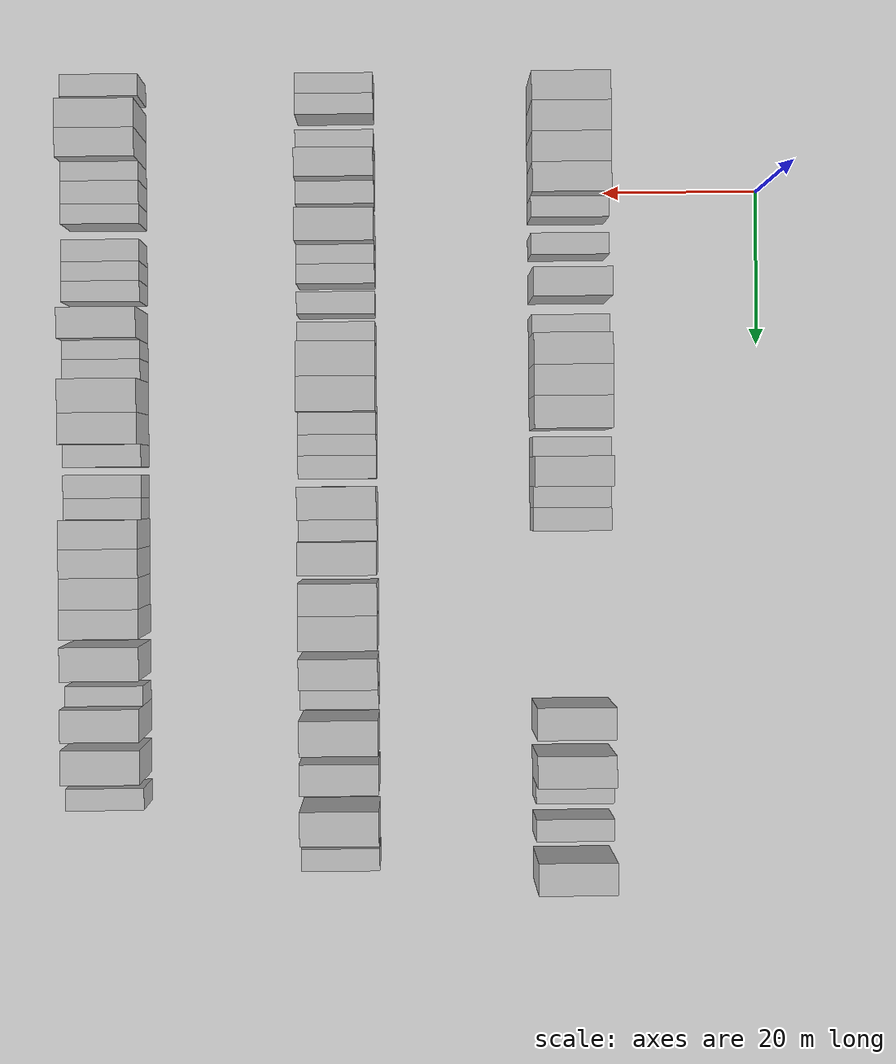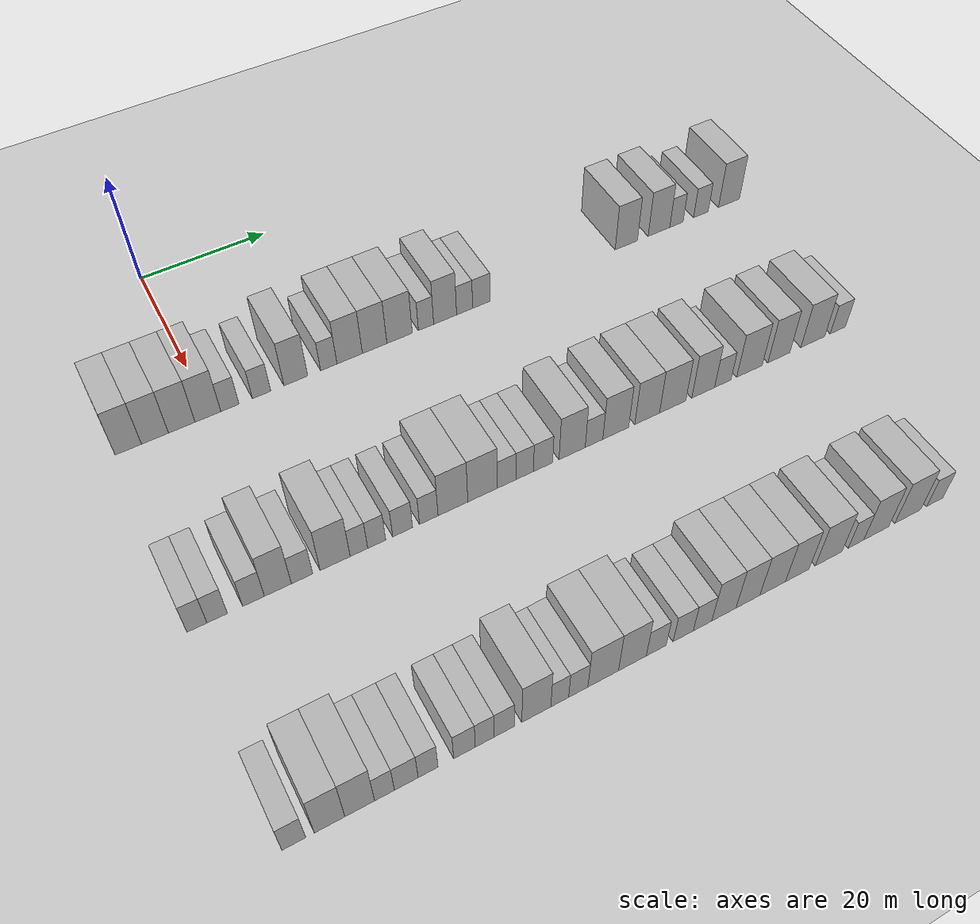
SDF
<sdf version="1.6">
 <world name="default">
  <include><name>ground_plane_1</name><uri>model://HANNAS_ground_plane</uri></include>
  <model name="building_110">
   <static>1</static>
   <pose>25.0000 -11.9744 0 0.000000 0.000000 0.000000</pose>
   <link name="link">
    <pose>0 0 4.50 0 0 0</pose>
    <collision name="collision"><geometry><box><size>10.0000 3.7165 9.0000</size></box></geometry></collision>
    <visual name="visual">
     <cast_shadows>0</cast_shadows>
     <geometry><box><size>10.0000 3.7165 9.0000</size></box></geometry>
     <material>
      <script>
       <uri>model://HANNAS_wall/materials/scripts</uri>
       <uri>model://HANNAS_wall/materials/textures</uri>
       <name>vrc/HANNAS_wall</name>
      </script>
     </material>
    </visual>
   </link>
  </model>
  <model name="building_111">
   <static>1</static>
   <pose>25.0000 -8.1921 0 0.000000 0.000000 0.000000</pose>
   <link name="link">
    <pose>0 0 4.50 0 0 0</pose>
    <collision name="collision"><geometry><box><size>10.0000 3.8481 9.0000</size></box></geometry></collision>
    <visual name="visual">
     <cast_shadows>0</cast_shadows>
     <geometry><box><size>10.0000 3.8481 9.0000</size></box></geometry>
     <material>
      <script>
       <uri>model://HANNAS_wall/materials/scripts</uri>
       <uri>model://HANNAS_wall/materials/textures</uri>
       <name>vrc/HANNAS_wall</name>
      </script>
     </material>
    </visual>
   </link>
  </model>
  <model name="building_112">
   <static>1</static>
   <pose>25.0000 -4.3406 0 0.000000 0.000000 0.000000</pose>
   <link name="link">
    <pose>0 0 4.50 0 0 0</pose>
    <collision name="collision"><geometry><box><size>10.0000 3.8550 9.0000</size></box></geometry></collision>
    <visual name="visual">
     <cast_shadows>0</cast_shadows>
     <geometry><box><size>10.0000 3.8550 9.0000</size></box></geometry>
     <material>
      <script>
       <uri>model://HANNAS_wall/materials/scripts</uri>
       <uri>model://HANNAS_wall/materials/textures</uri>
       <name>vrc/HANNAS_wall</name>
      </script>
     </material>
    </visual>
   </link>
  </model>
  <model name="building_113">
   <static>1</static>
   <pose>25.0000 -0.5288 0 0.000000 0.000000 0.000000</pose>
   <link name="link">
    <pose>0 0 4.50 0 0 0</pose>
    <collision name="collision"><geometry><box><size>10.0000 3.7687 9.0000</size></box></geometry></collision>
    <visual name="visual">
     <cast_shadows>0</cast_shadows>
     <geometry><box><size>10.0000 3.7687 9.0000</size></box></geometry>
     <material>
      <script>
       <uri>model://HANNAS_wall/materials/scripts</uri>
       <uri>model://HANNAS_wall/materials/textures</uri>
       <name>vrc/HANNAS_wall</name>
      </script>
     </material>
    </visual>
   </link>
  </model>
  <model name="building_114">
   <static>1</static>
   <pose>25.0000 2.7013 0 0.000000 0.000000 0.000000</pose>
   <link name="link">
    <pose>0 0 3.00 0 0 0</pose>
    <collision name="collision"><geometry><box><size>10.0000 2.6915 6.0000</size></box></geometry></collision>
    <visual name="visual">
     <cast_shadows>0</cast_shadows>
     <geometry><box><size>10.0000 2.6915 6.0000</size></box></geometry>
     <material>
      <script>
       <uri>model://HANNAS_wall/materials/scripts</uri>
       <uri>model://HANNAS_wall/materials/textures</uri>
       <name>vrc/HANNAS_wall</name>
      </script>
     </material>
    </visual>
   </link>
  </model>
  <model name="building_115">
   <static>1</static>
   <pose>25.0000 7.4290 0 0.000000 0.000000 0.000000</pose>
   <link name="link">
    <pose>0 0 3.00 0 0 0</pose>
    <collision name="collision"><geometry><box><size>10.0000 2.7639 6.0000</size></box></geometry></collision>
    <visual name="visual">
     <cast_shadows>0</cast_shadows>
     <geometry><box><size>10.0000 2.7639 6.0000</size></box></geometry>
     <material>
      <script>
       <uri>model://HANNAS_wall/materials/scripts</uri>
       <uri>model://HANNAS_wall/materials/textures</uri>
       <name>vrc/HANNAS_wall</name>
      </script>
     </material>
    </visual>
   </link>
  </model>
  <model name="building_116">
   <static>1</static>
   <pose>25.0000 12.6357 0 0.000000 0.000000 0.000000</pose>
   <link name="link">
    <pose>0 0 4.50 0 0 0</pose>
    <collision name="collision"><geometry><box><size>10.0000 3.6495 9.0000</size></box></geometry></collision>
    <visual name="visual">
     <cast_shadows>0</cast_shadows>
     <geometry><box><size>10.0000 3.6495 9.0000</size></box></geometry>
     <material>
      <script>
       <uri>model://HANNAS_wall/materials/scripts</uri>
       <uri>model://HANNAS_wall/materials/textures</uri>
       <name>vrc/HANNAS_wall</name>
      </script>
     </material>
    </visual>
   </link>
  </model>
  <model name="building_117">
   <static>1</static>
   <pose>25.0000 17.7365 0 0.000000 0.000000 0.000000</pose>
   <link name="link">
    <pose>0 0 3.00 0 0 0</pose>
    <collision name="collision"><geometry><box><size>10.0000 2.5520 6.0000</size></box></geometry></collision>
    <visual name="visual">
     <cast_shadows>0</cast_shadows>
     <geometry><box><size>10.0000 2.5520 6.0000</size></box></geometry>
     <material>
      <script>
       <uri>model://HANNAS_wall/materials/scripts</uri>
       <uri>model://HANNAS_wall/materials/textures</uri>
       <name>vrc/HANNAS_wall</name>
      </script>
     </material>
    </visual>
   </link>
  </model>
  <model name="building_118">
   <static>1</static>
   <pose>25.0000 21.0168 0 0.000000 0.000000 0.000000</pose>
   <link name="link">
    <pose>0 0 4.50 0 0 0</pose>
    <collision name="collision"><geometry><box><size>10.0000 4.0085 9.0000</size></box></geometry></collision>
    <visual name="visual">
     <cast_shadows>0</cast_shadows>
     <geometry><box><size>10.0000 4.0085 9.0000</size></box></geometry>
     <material>
      <script>
       <uri>model://HANNAS_wall/materials/scripts</uri>
       <uri>model://HANNAS_wall/materials/textures</uri>
       <name>vrc/HANNAS_wall</name>
      </script>
     </material>
    </visual>
   </link>
  </model>
  <model name="building_119">
   <static>1</static>
   <pose>25.0000 24.9818 0 0.000000 0.000000 0.000000</pose>
   <link name="link">
    <pose>0 0 4.50 0 0 0</pose>
    <collision name="collision"><geometry><box><size>10.0000 3.9215 9.0000</size></box></geometry></collision>
    <visual name="visual">
     <cast_shadows>0</cast_shadows>
     <geometry><box><size>10.0000 3.9215 9.0000</size></box></geometry>
     <material>
      <script>
       <uri>model://HANNAS_wall/materials/scripts</uri>
       <uri>model://HANNAS_wall/materials/textures</uri>
       <name>vrc/HANNAS_wall</name>
      </script>
     </material>
    </visual>
   </link>
  </model>
  <model name="building_120">
   <static>1</static>
   <pose>25.0000 29.0046 0 0.000000 0.000000 0.000000</pose>
   <link name="link">
    <pose>0 0 4.50 0 0 0</pose>
    <collision name="collision"><geometry><box><size>10.0000 4.1242 9.0000</size></box></geometry></collision>
    <visual name="visual">
     <cast_shadows>0</cast_shadows>
     <geometry><box><size>10.0000 4.1242 9.0000</size></box></geometry>
     <material>
      <script>
       <uri>model://HANNAS_wall/materials/scripts</uri>
       <uri>model://HANNAS_wall/materials/textures</uri>
       <name>vrc/HANNAS_wall</name>
      </script>
     </material>
    </visual>
   </link>
  </model>
  <model name="building_121">
   <static>1</static>
   <pose>25.0000 33.3214 0 0.000000 0.000000 0.000000</pose>
   <link name="link">
    <pose>0 0 3.00 0 0 0</pose>
    <collision name="collision"><geometry><box><size>10.0000 2.5093 6.0000</size></box></geometry></collision>
    <visual name="visual">
     <cast_shadows>0</cast_shadows>
     <geometry><box><size>10.0000 2.5093 6.0000</size></box></geometry>
     <material>
      <script>
       <uri>model://HANNAS_wall/materials/scripts</uri>
       <uri>model://HANNAS_wall/materials/textures</uri>
       <name>vrc/HANNAS_wall</name>
      </script>
     </material>
    </visual>
   </link>
  </model>
  <model name="building_122">
   <static>1</static>
   <pose>25.0000 36.4852 0 0.000000 0.000000 0.000000</pose>
   <link name="link">
    <pose>0 0 4.50 0 0 0</pose>
    <collision name="collision"><geometry><box><size>10.0000 3.8183 9.0000</size></box></geometry></collision>
    <visual name="visual">
     <cast_shadows>0</cast_shadows>
     <geometry><box><size>10.0000 3.8183 9.0000</size></box></geometry>
     <material>
      <script>
       <uri>model://HANNAS_wall/materials/scripts</uri>
       <uri>model://HANNAS_wall/materials/textures</uri>
       <name>vrc/HANNAS_wall</name>
      </script>
     </material>
    </visual>
   </link>
  </model>
  <model name="building_123">
   <static>1</static>
   <pose>25.0000 39.7418 0 0.000000 0.000000 0.000000</pose>
   <link name="link">
    <pose>0 0 3.00 0 0 0</pose>
    <collision name="collision"><geometry><box><size>10.0000 2.6950 6.0000</size></box></geometry></collision>
    <visual name="visual">
     <cast_shadows>0</cast_shadows>
     <geometry><box><size>10.0000 2.6950 6.0000</size></box></geometry>
     <material>
      <script>
       <uri>model://HANNAS_wall/materials/scripts</uri>
       <uri>model://HANNAS_wall/materials/textures</uri>
       <name>vrc/HANNAS_wall</name>
      </script>
     </material>
    </visual>
   </link>
  </model>
  <model name="building_124">
   <static>1</static>
   <pose>25.0000 42.5812 0 0.000000 0.000000 0.000000</pose>
   <link name="link">
    <pose>0 0 3.00 0 0 0</pose>
    <collision name="collision"><geometry><box><size>10.0000 2.9837 6.0000</size></box></geometry></collision>
    <visual name="visual">
     <cast_shadows>0</cast_shadows>
     <geometry><box><size>10.0000 2.9837 6.0000</size></box></geometry>
     <material>
      <script>
       <uri>model://HANNAS_wall/materials/scripts</uri>
       <uri>model://HANNAS_wall/materials/textures</uri>
       <name>vrc/HANNAS_wall</name>
      </script>
     </material>
    </visual>
   </link>
  </model>
  <model name="building_125">
   <static>1</static>
   <pose>25.0000 68.2220 0 0.000000 0.000000 0.000000</pose>
   <link name="link">
    <pose>0 0 4.50 0 0 0</pose>
    <collision name="collision"><geometry><box><size>10.0000 4.0993 9.0000</size></box></geometry></collision>
    <visual name="visual">
     <cast_shadows>0</cast_shadows>
     <geometry><box><size>10.0000 4.0993 9.0000</size></box></geometry>
     <material>
      <script>
       <uri>model://HANNAS_wall/materials/scripts</uri>
       <uri>model://HANNAS_wall/materials/textures</uri>
       <name>vrc/HANNAS_wall</name>
      </script>
     </material>
    </visual>
   </link>
  </model>
  <model name="building_126">
   <static>1</static>
   <pose>25.0000 74.3005 0 0.000000 0.000000 0.000000</pose>
   <link name="link">
    <pose>0 0 4.50 0 0 0</pose>
    <collision name="collision"><geometry><box><size>10.0000 4.0575 9.0000</size></box></geometry></collision>
    <visual name="visual">
     <cast_shadows>0</cast_shadows>
     <geometry><box><size>10.0000 4.0575 9.0000</size></box></geometry>
     <material>
      <script>
       <uri>model://HANNAS_wall/materials/scripts</uri>
       <uri>model://HANNAS_wall/materials/textures</uri>
       <name>vrc/HANNAS_wall</name>
      </script>
     </material>
    </visual>
   </link>
  </model>
  <model name="building_127">
   <static>1</static>
   <pose>25.0000 77.5912 0 0.000000 0.000000 0.000000</pose>
   <link name="link">
    <pose>0 0 3.00 0 0 0</pose>
    <collision name="collision"><geometry><box><size>10.0000 2.5240 6.0000</size></box></geometry></collision>
    <visual name="visual">
     <cast_shadows>0</cast_shadows>
     <geometry><box><size>10.0000 2.5240 6.0000</size></box></geometry>
     <material>
      <script>
       <uri>model://HANNAS_wall/materials/scripts</uri>
       <uri>model://HANNAS_wall/materials/textures</uri>
       <name>vrc/HANNAS_wall</name>
      </script>
     </material>
    </visual>
   </link>
  </model>
  <model name="building_128">
   <static>1</static>
   <pose>25.0000 82.2687 0 0.000000 0.000000 0.000000</pose>
   <link name="link">
    <pose>0 0 3.00 0 0 0</pose>
    <collision name="collision"><geometry><box><size>10.0000 2.8309 6.0000</size></box></geometry></collision>
    <visual name="visual">
     <cast_shadows>0</cast_shadows>
     <geometry><box><size>10.0000 2.8309 6.0000</size></box></geometry>
     <material>
      <script>
       <uri>model://HANNAS_wall/materials/scripts</uri>
       <uri>model://HANNAS_wall/materials/textures</uri>
       <name>vrc/HANNAS_wall</name>
      </script>
     </material>
    </visual>
   </link>
  </model>
  <model name="building_129">
   <static>1</static>
   <pose>25.0000 87.7369 0 0.000000 0.000000 0.000000</pose>
   <link name="link">
    <pose>0 0 4.50 0 0 0</pose>
    <collision name="collision"><geometry><box><size>10.0000 4.1055 9.0000</size></box></geometry></collision>
    <visual name="visual">
     <cast_shadows>0</cast_shadows>
     <geometry><box><size>10.0000 4.1055 9.0000</size></box></geometry>
     <material>
      <script>
       <uri>model://HANNAS_wall/materials/scripts</uri>
       <uri>model://HANNAS_wall/materials/textures</uri>
       <name>vrc/HANNAS_wall</name>
      </script>
     </material>
    </visual>
   </link>
  </model>
  <model name="building_342">
   <static>1</static>
   <pose>55.0000 -13.3091 0 0.000000 0.000000 0.000000</pose>
   <link name="link">
    <pose>0 0 3.00 0 0 0</pose>
    <collision name="collision"><geometry><box><size>10.0000 2.5905 6.0000</size></box></geometry></collision>
    <visual name="visual">
     <cast_shadows>0</cast_shadows>
     <geometry><box><size>10.0000 2.5905 6.0000</size></box></geometry>
     <material>
      <script>
       <uri>model://HANNAS_wall/materials/scripts</uri>
       <uri>model://HANNAS_wall/materials/textures</uri>
       <name>vrc/HANNAS_wall</name>
      </script>
     </material>
    </visual>
   </link>
  </model>
  <model name="building_343">
   <static>1</static>
   <pose>55.0000 -10.6800 0 0.000000 0.000000 0.000000</pose>
   <link name="link">
    <pose>0 0 3.00 0 0 0</pose>
    <collision name="collision"><geometry><box><size>10.0000 2.6679 6.0000</size></box></geometry></collision>
    <visual name="visual">
     <cast_shadows>0</cast_shadows>
     <geometry><box><size>10.0000 2.6679 6.0000</size></box></geometry>
     <material>
      <script>
       <uri>model://HANNAS_wall/materials/scripts</uri>
       <uri>model://HANNAS_wall/materials/textures</uri>
       <name>vrc/HANNAS_wall</name>
      </script>
     </material>
    </visual>
   </link>
  </model>
  <model name="building_344">
   <static>1</static>
   <pose>55.0000 -5.9070 0 0.000000 0.000000 0.000000</pose>
   <link name="link">
    <pose>0 0 3.00 0 0 0</pose>
    <collision name="collision"><geometry><box><size>10.0000 2.8781 6.0000</size></box></geometry></collision>
    <visual name="visual">
     <cast_shadows>0</cast_shadows>
     <geometry><box><size>10.0000 2.8781 6.0000</size></box></geometry>
     <material>
      <script>
       <uri>model://HANNAS_wall/materials/scripts</uri>
       <uri>model://HANNAS_wall/materials/textures</uri>
       <name>vrc/HANNAS_wall</name>
      </script>
     </material>
    </visual>
   </link>
  </model>
  <model name="building_345">
   <static>1</static>
   <pose>55.0000 -2.6522 0 0.000000 0.000000 0.000000</pose>
   <link name="link">
    <pose>0 0 4.50 0 0 0</pose>
    <collision name="collision"><geometry><box><size>10.0000 3.6316 9.0000</size></box></geometry></collision>
    <visual name="visual">
     <cast_shadows>0</cast_shadows>
     <geometry><box><size>10.0000 3.6316 9.0000</size></box></geometry>
     <material>
      <script>
       <uri>model://HANNAS_wall/materials/scripts</uri>
       <uri>model://HANNAS_wall/materials/textures</uri>
       <name>vrc/HANNAS_wall</name>
      </script>
     </material>
    </visual>
   </link>
  </model>
  <model name="building_346">
   <static>1</static>
   <pose>55.0000 0.6236 0 0.000000 0.000000 0.000000</pose>
   <link name="link">
    <pose>0 0 3.00 0 0 0</pose>
    <collision name="collision"><geometry><box><size>10.0000 2.9200 6.0000</size></box></geometry></collision>
    <visual name="visual">
     <cast_shadows>0</cast_shadows>
     <geometry><box><size>10.0000 2.9200 6.0000</size></box></geometry>
     <material>
      <script>
       <uri>model://HANNAS_wall/materials/scripts</uri>
       <uri>model://HANNAS_wall/materials/textures</uri>
       <name>vrc/HANNAS_wall</name>
      </script>
     </material>
    </visual>
   </link>
  </model>
  <model name="building_347">
   <static>1</static>
   <pose>55.0000 5.1681 0 0.000000 0.000000 0.000000</pose>
   <link name="link">
    <pose>0 0 4.50 0 0 0</pose>
    <collision name="collision"><geometry><box><size>10.0000 4.1691 9.0000</size></box></geometry></collision>
    <visual name="visual">
     <cast_shadows>0</cast_shadows>
     <geometry><box><size>10.0000 4.1691 9.0000</size></box></geometry>
     <material>
      <script>
       <uri>model://HANNAS_wall/materials/scripts</uri>
       <uri>model://HANNAS_wall/materials/textures</uri>
       <name>vrc/HANNAS_wall</name>
      </script>
     </material>
    </visual>
   </link>
  </model>
  <model name="building_348">
   <static>1</static>
   <pose>55.0000 8.4857 0 0.000000 0.000000 0.000000</pose>
   <link name="link">
    <pose>0 0 3.00 0 0 0</pose>
    <collision name="collision"><geometry><box><size>10.0000 2.4660 6.0000</size></box></geometry></collision>
    <visual name="visual">
     <cast_shadows>0</cast_shadows>
     <geometry><box><size>10.0000 2.4660 6.0000</size></box></geometry>
     <material>
      <script>
       <uri>model://HANNAS_wall/materials/scripts</uri>
       <uri>model://HANNAS_wall/materials/textures</uri>
       <name>vrc/HANNAS_wall</name>
      </script>
     </material>
    </visual>
   </link>
  </model>
  <model name="building_349">
   <static>1</static>
   <pose>55.0000 10.9901 0 0.000000 0.000000 0.000000</pose>
   <link name="link">
    <pose>0 0 3.00 0 0 0</pose>
    <collision name="collision"><geometry><box><size>10.0000 2.5428 6.0000</size></box></geometry></collision>
    <visual name="visual">
     <cast_shadows>0</cast_shadows>
     <geometry><box><size>10.0000 2.5428 6.0000</size></box></geometry>
     <material>
      <script>
       <uri>model://HANNAS_wall/materials/scripts</uri>
       <uri>model://HANNAS_wall/materials/textures</uri>
       <name>vrc/HANNAS_wall</name>
      </script>
     </material>
    </visual>
   </link>
  </model>
  <model name="building_350">
   <static>1</static>
   <pose>55.0000 14.6905 0 0.000000 0.000000 0.000000</pose>
   <link name="link">
    <pose>0 0 3.00 0 0 0</pose>
    <collision name="collision"><geometry><box><size>10.0000 2.8580 6.0000</size></box></geometry></collision>
    <visual name="visual">
     <cast_shadows>0</cast_shadows>
     <geometry><box><size>10.0000 2.8580 6.0000</size></box></geometry>
     <material>
      <script>
       <uri>model://HANNAS_wall/materials/scripts</uri>
       <uri>model://HANNAS_wall/materials/textures</uri>
       <name>vrc/HANNAS_wall</name>
      </script>
     </material>
    </visual>
   </link>
  </model>
  <model name="building_351">
   <static>1</static>
   <pose>55.0000 18.4746 0 0.000000 0.000000 0.000000</pose>
   <link name="link">
    <pose>0 0 3.00 0 0 0</pose>
    <collision name="collision"><geometry><box><size>10.0000 2.7102 6.0000</size></box></geometry></collision>
    <visual name="visual">
     <cast_shadows>0</cast_shadows>
     <geometry><box><size>10.0000 2.7102 6.0000</size></box></geometry>
     <material>
      <script>
       <uri>model://HANNAS_wall/materials/scripts</uri>
       <uri>model://HANNAS_wall/materials/textures</uri>
       <name>vrc/HANNAS_wall</name>
      </script>
     </material>
    </visual>
   </link>
  </model>
  <model name="building_352">
   <static>1</static>
   <pose>55.0000 22.0265 0 0.000000 0.000000 0.000000</pose>
   <link name="link">
    <pose>0 0 4.50 0 0 0</pose>
    <collision name="collision"><geometry><box><size>10.0000 4.3938 9.0000</size></box></geometry></collision>
    <visual name="visual">
     <cast_shadows>0</cast_shadows>
     <geometry><box><size>10.0000 4.3938 9.0000</size></box></geometry>
     <material>
      <script>
       <uri>model://HANNAS_wall/materials/scripts</uri>
       <uri>model://HANNAS_wall/materials/textures</uri>
       <name>vrc/HANNAS_wall</name>
      </script>
     </material>
    </visual>
   </link>
  </model>
  <model name="building_353">
   <static>1</static>
   <pose>55.0000 26.4506 0 0.000000 0.000000 0.000000</pose>
   <link name="link">
    <pose>0 0 4.50 0 0 0</pose>
    <collision name="collision"><geometry><box><size>10.0000 4.4544 9.0000</size></box></geometry></collision>
    <visual name="visual">
     <cast_shadows>0</cast_shadows>
     <geometry><box><size>10.0000 4.4544 9.0000</size></box></geometry>
     <material>
      <script>
       <uri>model://HANNAS_wall/materials/scripts</uri>
       <uri>model://HANNAS_wall/materials/textures</uri>
       <name>vrc/HANNAS_wall</name>
      </script>
     </material>
    </visual>
   </link>
  </model>
  <model name="building_354">
   <static>1</static>
   <pose>55.0000 30.0835 0 0.000000 0.000000 0.000000</pose>
   <link name="link">
    <pose>0 0 3.00 0 0 0</pose>
    <collision name="collision"><geometry><box><size>10.0000 2.8115 6.0000</size></box></geometry></collision>
    <visual name="visual">
     <cast_shadows>0</cast_shadows>
     <geometry><box><size>10.0000 2.8115 6.0000</size></box></geometry>
     <material>
      <script>
       <uri>model://HANNAS_wall/materials/scripts</uri>
       <uri>model://HANNAS_wall/materials/textures</uri>
       <name>vrc/HANNAS_wall</name>
      </script>
     </material>
    </visual>
   </link>
  </model>
  <model name="building_355">
   <static>1</static>
   <pose>55.0000 32.8354 0 0.000000 0.000000 0.000000</pose>
   <link name="link">
    <pose>0 0 3.00 0 0 0</pose>
    <collision name="collision"><geometry><box><size>10.0000 2.6922 6.0000</size></box></geometry></collision>
    <visual name="visual">
     <cast_shadows>0</cast_shadows>
     <geometry><box><size>10.0000 2.6922 6.0000</size></box></geometry>
     <material>
      <script>
       <uri>model://HANNAS_wall/materials/scripts</uri>
       <uri>model://HANNAS_wall/materials/textures</uri>
       <name>vrc/HANNAS_wall</name>
      </script>
     </material>
    </visual>
   </link>
  </model>
  <model name="building_356">
   <static>1</static>
   <pose>55.0000 35.6728 0 0.000000 0.000000 0.000000</pose>
   <link name="link">
    <pose>0 0 3.00 0 0 0</pose>
    <collision name="collision"><geometry><box><size>10.0000 2.9827 6.0000</size></box></geometry></collision>
    <visual name="visual">
     <cast_shadows>0</cast_shadows>
     <geometry><box><size>10.0000 2.9827 6.0000</size></box></geometry>
     <material>
      <script>
       <uri>model://HANNAS_wall/materials/scripts</uri>
       <uri>model://HANNAS_wall/materials/textures</uri>
       <name>vrc/HANNAS_wall</name>
      </script>
     </material>
    </visual>
   </link>
  </model>
  <model name="building_357">
   <static>1</static>
   <pose>55.0000 40.2346 0 0.000000 0.000000 0.000000</pose>
   <link name="link">
    <pose>0 0 4.50 0 0 0</pose>
    <collision name="collision"><geometry><box><size>10.0000 4.1408 9.0000</size></box></geometry></collision>
    <visual name="visual">
     <cast_shadows>0</cast_shadows>
     <geometry><box><size>10.0000 4.1408 9.0000</size></box></geometry>
     <material>
      <script>
       <uri>model://HANNAS_wall/materials/scripts</uri>
       <uri>model://HANNAS_wall/materials/textures</uri>
       <name>vrc/HANNAS_wall</name>
      </script>
     </material>
    </visual>
   </link>
  </model>
  <model name="building_358">
   <static>1</static>
   <pose>55.0000 43.7119 0 0.000000 0.000000 0.000000</pose>
   <link name="link">
    <pose>0 0 3.00 0 0 0</pose>
    <collision name="collision"><geometry><box><size>10.0000 2.8138 6.0000</size></box></geometry></collision>
    <visual name="visual">
     <cast_shadows>0</cast_shadows>
     <geometry><box><size>10.0000 2.8138 6.0000</size></box></geometry>
     <material>
      <script>
       <uri>model://HANNAS_wall/materials/scripts</uri>
       <uri>model://HANNAS_wall/materials/textures</uri>
       <name>vrc/HANNAS_wall</name>
      </script>
     </material>
    </visual>
   </link>
  </model>
  <model name="building_359">
   <static>1</static>
   <pose>55.0000 47.2188 0 0.000000 0.000000 0.000000</pose>
   <link name="link">
    <pose>0 0 4.50 0 0 0</pose>
    <collision name="collision"><geometry><box><size>10.0000 4.2000 9.0000</size></box></geometry></collision>
    <visual name="visual">
     <cast_shadows>0</cast_shadows>
     <geometry><box><size>10.0000 4.2000 9.0000</size></box></geometry>
     <material>
      <script>
       <uri>model://HANNAS_wall/materials/scripts</uri>
       <uri>model://HANNAS_wall/materials/textures</uri>
       <name>vrc/HANNAS_wall</name>
      </script>
     </material>
    </visual>
   </link>
  </model>
  <model name="building_360">
   <static>1</static>
   <pose>55.0000 52.3633 0 0.000000 0.000000 0.000000</pose>
   <link name="link">
    <pose>0 0 4.50 0 0 0</pose>
    <collision name="collision"><geometry><box><size>10.0000 4.0890 9.0000</size></box></geometry></collision>
    <visual name="visual">
     <cast_shadows>0</cast_shadows>
     <geometry><box><size>10.0000 4.0890 9.0000</size></box></geometry>
     <material>
      <script>
       <uri>model://HANNAS_wall/materials/scripts</uri>
       <uri>model://HANNAS_wall/materials/textures</uri>
       <name>vrc/HANNAS_wall</name>
      </script>
     </material>
    </visual>
   </link>
  </model>
  <model name="building_361">
   <static>1</static>
   <pose>55.0000 56.6086 0 0.000000 0.000000 0.000000</pose>
   <link name="link">
    <pose>0 0 4.50 0 0 0</pose>
    <collision name="collision"><geometry><box><size>10.0000 4.4016 9.0000</size></box></geometry></collision>
    <visual name="visual">
     <cast_shadows>0</cast_shadows>
     <geometry><box><size>10.0000 4.4016 9.0000</size></box></geometry>
     <material>
      <script>
       <uri>model://HANNAS_wall/materials/scripts</uri>
       <uri>model://HANNAS_wall/materials/textures</uri>
       <name>vrc/HANNAS_wall</name>
      </script>
     </material>
    </visual>
   </link>
  </model>
  <model name="building_362">
   <static>1</static>
   <pose>55.0000 61.7635 0 0.000000 0.000000 0.000000</pose>
   <link name="link">
    <pose>0 0 4.50 0 0 0</pose>
    <collision name="collision"><geometry><box><size>10.0000 3.9082 9.0000</size></box></geometry></collision>
    <visual name="visual">
     <cast_shadows>0</cast_shadows>
     <geometry><box><size>10.0000 3.9082 9.0000</size></box></geometry>
     <material>
      <script>
       <uri>model://HANNAS_wall/materials/scripts</uri>
       <uri>model://HANNAS_wall/materials/textures</uri>
       <name>vrc/HANNAS_wall</name>
      </script>
     </material>
    </visual>
   </link>
  </model>
  <model name="building_363">
   <static>1</static>
   <pose>55.0000 65.1330 0 0.000000 0.000000 0.000000</pose>
   <link name="link">
    <pose>0 0 3.00 0 0 0</pose>
    <collision name="collision"><geometry><box><size>10.0000 2.8308 6.0000</size></box></geometry></collision>
    <visual name="visual">
     <cast_shadows>0</cast_shadows>
     <geometry><box><size>10.0000 2.8308 6.0000</size></box></geometry>
     <material>
      <script>
       <uri>model://HANNAS_wall/materials/scripts</uri>
       <uri>model://HANNAS_wall/materials/textures</uri>
       <name>vrc/HANNAS_wall</name>
      </script>
     </material>
    </visual>
   </link>
  </model>
  <model name="building_364">
   <static>1</static>
   <pose>55.0000 69.7888 0 0.000000 0.000000 0.000000</pose>
   <link name="link">
    <pose>0 0 4.50 0 0 0</pose>
    <collision name="collision"><geometry><box><size>10.0000 4.4807 9.0000</size></box></geometry></collision>
    <visual name="visual">
     <cast_shadows>0</cast_shadows>
     <geometry><box><size>10.0000 4.4807 9.0000</size></box></geometry>
     <material>
      <script>
       <uri>model://HANNAS_wall/materials/scripts</uri>
       <uri>model://HANNAS_wall/materials/textures</uri>
       <name>vrc/HANNAS_wall</name>
      </script>
     </material>
    </visual>
   </link>
  </model>
  <model name="building_365">
   <static>1</static>
   <pose>55.0000 74.9965 0 0.000000 0.000000 0.000000</pose>
   <link name="link">
    <pose>0 0 4.50 0 0 0</pose>
    <collision name="collision"><geometry><box><size>10.0000 3.9348 9.0000</size></box></geometry></collision>
    <visual name="visual">
     <cast_shadows>0</cast_shadows>
     <geometry><box><size>10.0000 3.9348 9.0000</size></box></geometry>
     <material>
      <script>
       <uri>model://HANNAS_wall/materials/scripts</uri>
       <uri>model://HANNAS_wall/materials/textures</uri>
       <name>vrc/HANNAS_wall</name>
      </script>
     </material>
    </visual>
   </link>
  </model>
  <model name="building_366">
   <static>1</static>
   <pose>55.0000 81.1471 0 0.000000 0.000000 0.000000</pose>
   <link name="link">
    <pose>0 0 4.50 0 0 0</pose>
    <collision name="collision"><geometry><box><size>10.0000 4.3663 9.0000</size></box></geometry></collision>
    <visual name="visual">
     <cast_shadows>0</cast_shadows>
     <geometry><box><size>10.0000 4.3663 9.0000</size></box></geometry>
     <material>
      <script>
       <uri>model://HANNAS_wall/materials/scripts</uri>
       <uri>model://HANNAS_wall/materials/textures</uri>
       <name>vrc/HANNAS_wall</name>
      </script>
     </material>
    </visual>
   </link>
  </model>
  <model name="building_367">
   <static>1</static>
   <pose>55.0000 85.7487 0 0.000000 0.000000 0.000000</pose>
   <link name="link">
    <pose>0 0 3.00 0 0 0</pose>
    <collision name="collision"><geometry><box><size>10.0000 2.8371 6.0000</size></box></geometry></collision>
    <visual name="visual">
     <cast_shadows>0</cast_shadows>
     <geometry><box><size>10.0000 2.8371 6.0000</size></box></geometry>
     <material>
      <script>
       <uri>model://HANNAS_wall/materials/scripts</uri>
       <uri>model://HANNAS_wall/materials/textures</uri>
       <name>vrc/HANNAS_wall</name>
      </script>
     </material>
    </visual>
   </link>
  </model>
  <model name="building_561">
   <static>1</static>
   <pose>85.0000 -13.3199 0 0.000000 0.000000 0.000000</pose>
   <link name="link">
    <pose>0 0 3.00 0 0 0</pose>
    <collision name="collision"><geometry><box><size>10.0000 2.8226 6.0000</size></box></geometry></collision>
    <visual name="visual">
     <cast_shadows>0</cast_shadows>
     <geometry><box><size>10.0000 2.8226 6.0000</size></box></geometry>
     <material>
      <script>
       <uri>model://HANNAS_wall/materials/scripts</uri>
       <uri>model://HANNAS_wall/materials/textures</uri>
       <name>vrc/HANNAS_wall</name>
      </script>
     </material>
    </visual>
   </link>
  </model>
  <model name="building_562">
   <static>1</static>
   <pose>85.0000 -9.0692 0 0.000000 0.000000 0.000000</pose>
   <link name="link">
    <pose>0 0 4.50 0 0 0</pose>
    <collision name="collision"><geometry><box><size>10.0000 3.6788 9.0000</size></box></geometry></collision>
    <visual name="visual">
     <cast_shadows>0</cast_shadows>
     <geometry><box><size>10.0000 3.6788 9.0000</size></box></geometry>
     <material>
      <script>
       <uri>model://HANNAS_wall/materials/scripts</uri>
       <uri>model://HANNAS_wall/materials/textures</uri>
       <name>vrc/HANNAS_wall</name>
      </script>
     </material>
    </visual>
   </link>
  </model>
  <model name="building_563">
   <static>1</static>
   <pose>85.0000 -5.4130 0 0.000000 0.000000 0.000000</pose>
   <link name="link">
    <pose>0 0 4.50 0 0 0</pose>
    <collision name="collision"><geometry><box><size>10.0000 3.6337 9.0000</size></box></geometry></collision>
    <visual name="visual">
     <cast_shadows>0</cast_shadows>
     <geometry><box><size>10.0000 3.6337 9.0000</size></box></geometry>
     <material>
      <script>
       <uri>model://HANNAS_wall/materials/scripts</uri>
       <uri>model://HANNAS_wall/materials/textures</uri>
       <name>vrc/HANNAS_wall</name>
      </script>
     </material>
    </visual>
   </link>
  </model>
  <model name="building_564">
   <static>1</static>
   <pose>85.0000 -2.3698 0 0.000000 0.000000 0.000000</pose>
   <link name="link">
    <pose>0 0 3.00 0 0 0</pose>
    <collision name="collision"><geometry><box><size>10.0000 2.4527 6.0000</size></box></geometry></collision>
    <visual name="visual">
     <cast_shadows>0</cast_shadows>
     <geometry><box><size>10.0000 2.4527 6.0000</size></box></geometry>
     <material>
      <script>
       <uri>model://HANNAS_wall/materials/scripts</uri>
       <uri>model://HANNAS_wall/materials/textures</uri>
       <name>vrc/HANNAS_wall</name>
      </script>
     </material>
    </visual>
   </link>
  </model>
  <model name="building_565">
   <static>1</static>
   <pose>85.0000 0.3405 0 0.000000 0.000000 0.000000</pose>
   <link name="link">
    <pose>0 0 3.00 0 0 0</pose>
    <collision name="collision"><geometry><box><size>10.0000 2.9677 6.0000</size></box></geometry></collision>
    <visual name="visual">
     <cast_shadows>0</cast_shadows>
     <geometry><box><size>10.0000 2.9677 6.0000</size></box></geometry>
     <material>
      <script>
       <uri>model://HANNAS_wall/materials/scripts</uri>
       <uri>model://HANNAS_wall/materials/textures</uri>
       <name>vrc/HANNAS_wall</name>
      </script>
     </material>
    </visual>
   </link>
  </model>
  <model name="building_566">
   <static>1</static>
   <pose>85.0000 3.0853 0 0.000000 0.000000 0.000000</pose>
   <link name="link">
    <pose>0 0 3.00 0 0 0</pose>
    <collision name="collision"><geometry><box><size>10.0000 2.5220 6.0000</size></box></geometry></collision>
    <visual name="visual">
     <cast_shadows>0</cast_shadows>
     <geometry><box><size>10.0000 2.5220 6.0000</size></box></geometry>
     <material>
      <script>
       <uri>model://HANNAS_wall/materials/scripts</uri>
       <uri>model://HANNAS_wall/materials/textures</uri>
       <name>vrc/HANNAS_wall</name>
      </script>
     </material>
    </visual>
   </link>
  </model>
  <model name="building_567">
   <static>1</static>
   <pose>85.0000 7.7446 0 0.000000 0.000000 0.000000</pose>
   <link name="link">
    <pose>0 0 3.00 0 0 0</pose>
    <collision name="collision"><geometry><box><size>10.0000 2.7965 6.0000</size></box></geometry></collision>
    <visual name="visual">
     <cast_shadows>0</cast_shadows>
     <geometry><box><size>10.0000 2.7965 6.0000</size></box></geometry>
     <material>
      <script>
       <uri>model://HANNAS_wall/materials/scripts</uri>
       <uri>model://HANNAS_wall/materials/textures</uri>
       <name>vrc/HANNAS_wall</name>
      </script>
     </material>
    </visual>
   </link>
  </model>
  <model name="building_568">
   <static>1</static>
   <pose>85.0000 10.3810 0 0.000000 0.000000 0.000000</pose>
   <link name="link">
    <pose>0 0 3.00 0 0 0</pose>
    <collision name="collision"><geometry><box><size>10.0000 2.4762 6.0000</size></box></geometry></collision>
    <visual name="visual">
     <cast_shadows>0</cast_shadows>
     <geometry><box><size>10.0000 2.4762 6.0000</size></box></geometry>
     <material>
      <script>
       <uri>model://HANNAS_wall/materials/scripts</uri>
       <uri>model://HANNAS_wall/materials/textures</uri>
       <name>vrc/HANNAS_wall</name>
      </script>
     </material>
    </visual>
   </link>
  </model>
  <model name="building_569">
   <static>1</static>
   <pose>85.0000 12.9456 0 0.000000 0.000000 0.000000</pose>
   <link name="link">
    <pose>0 0 3.00 0 0 0</pose>
    <collision name="collision"><geometry><box><size>10.0000 2.6530 6.0000</size></box></geometry></collision>
    <visual name="visual">
     <cast_shadows>0</cast_shadows>
     <geometry><box><size>10.0000 2.6530 6.0000</size></box></geometry>
     <material>
      <script>
       <uri>model://HANNAS_wall/materials/scripts</uri>
       <uri>model://HANNAS_wall/materials/textures</uri>
       <name>vrc/HANNAS_wall</name>
      </script>
     </material>
    </visual>
   </link>
  </model>
  <model name="building_570">
   <static>1</static>
   <pose>85.0000 17.2252 0 0.000000 0.000000 0.000000</pose>
   <link name="link">
    <pose>0 0 4.50 0 0 0</pose>
    <collision name="collision"><geometry><box><size>10.0000 3.9062 9.0000</size></box></geometry></collision>
    <visual name="visual">
     <cast_shadows>0</cast_shadows>
     <geometry><box><size>10.0000 3.9062 9.0000</size></box></geometry>
     <material>
      <script>
       <uri>model://HANNAS_wall/materials/scripts</uri>
       <uri>model://HANNAS_wall/materials/textures</uri>
       <name>vrc/HANNAS_wall</name>
      </script>
     </material>
    </visual>
   </link>
  </model>
  <model name="building_571">
   <static>1</static>
   <pose>85.0000 20.3946 0 0.000000 0.000000 0.000000</pose>
   <link name="link">
    <pose>0 0 3.00 0 0 0</pose>
    <collision name="collision"><geometry><box><size>10.0000 2.4325 6.0000</size></box></geometry></collision>
    <visual name="visual">
     <cast_shadows>0</cast_shadows>
     <geometry><box><size>10.0000 2.4325 6.0000</size></box></geometry>
     <material>
      <script>
       <uri>model://HANNAS_wall/materials/scripts</uri>
       <uri>model://HANNAS_wall/materials/textures</uri>
       <name>vrc/HANNAS_wall</name>
      </script>
     </material>
    </visual>
   </link>
  </model>
  <model name="building_572">
   <static>1</static>
   <pose>85.0000 22.9358 0 0.000000 0.000000 0.000000</pose>
   <link name="link">
    <pose>0 0 3.00 0 0 0</pose>
    <collision name="collision"><geometry><box><size>10.0000 2.6499 6.0000</size></box></geometry></collision>
    <visual name="visual">
     <cast_shadows>0</cast_shadows>
     <geometry><box><size>10.0000 2.6499 6.0000</size></box></geometry>
     <material>
      <script>
       <uri>model://HANNAS_wall/materials/scripts</uri>
       <uri>model://HANNAS_wall/materials/textures</uri>
       <name>vrc/HANNAS_wall</name>
      </script>
     </material>
    </visual>
   </link>
  </model>
  <model name="building_573">
   <static>1</static>
   <pose>85.0000 26.4031 0 0.000000 0.000000 0.000000</pose>
   <link name="link">
    <pose>0 0 4.50 0 0 0</pose>
    <collision name="collision"><geometry><box><size>10.0000 4.2847 9.0000</size></box></geometry></collision>
    <visual name="visual">
     <cast_shadows>0</cast_shadows>
     <geometry><box><size>10.0000 4.2847 9.0000</size></box></geometry>
     <material>
      <script>
       <uri>model://HANNAS_wall/materials/scripts</uri>
       <uri>model://HANNAS_wall/materials/textures</uri>
       <name>vrc/HANNAS_wall</name>
      </script>
     </material>
    </visual>
   </link>
  </model>
  <model name="building_574">
   <static>1</static>
   <pose>85.0000 30.5284 0 0.000000 0.000000 0.000000</pose>
   <link name="link">
    <pose>0 0 4.50 0 0 0</pose>
    <collision name="collision"><geometry><box><size>10.0000 3.9658 9.0000</size></box></geometry></collision>
    <visual name="visual">
     <cast_shadows>0</cast_shadows>
     <geometry><box><size>10.0000 3.9658 9.0000</size></box></geometry>
     <material>
      <script>
       <uri>model://HANNAS_wall/materials/scripts</uri>
       <uri>model://HANNAS_wall/materials/textures</uri>
       <name>vrc/HANNAS_wall</name>
      </script>
     </material>
    </visual>
   </link>
  </model>
  <model name="building_575">
   <static>1</static>
   <pose>85.0000 33.9455 0 0.000000 0.000000 0.000000</pose>
   <link name="link">
    <pose>0 0 3.00 0 0 0</pose>
    <collision name="collision"><geometry><box><size>10.0000 2.8685 6.0000</size></box></geometry></collision>
    <visual name="visual">
     <cast_shadows>0</cast_shadows>
     <geometry><box><size>10.0000 2.8685 6.0000</size></box></geometry>
     <material>
      <script>
       <uri>model://HANNAS_wall/materials/scripts</uri>
       <uri>model://HANNAS_wall/materials/textures</uri>
       <name>vrc/HANNAS_wall</name>
      </script>
     </material>
    </visual>
   </link>
  </model>
  <model name="building_576">
   <static>1</static>
   <pose>85.0000 37.8598 0 0.000000 0.000000 0.000000</pose>
   <link name="link">
    <pose>0 0 3.00 0 0 0</pose>
    <collision name="collision"><geometry><box><size>10.0000 2.9601 6.0000</size></box></geometry></collision>
    <visual name="visual">
     <cast_shadows>0</cast_shadows>
     <geometry><box><size>10.0000 2.9601 6.0000</size></box></geometry>
     <material>
      <script>
       <uri>model://HANNAS_wall/materials/scripts</uri>
       <uri>model://HANNAS_wall/materials/textures</uri>
       <name>vrc/HANNAS_wall</name>
      </script>
     </material>
    </visual>
   </link>
  </model>
  <model name="building_577">
   <static>1</static>
   <pose>85.0000 40.7126 0 0.000000 0.000000 0.000000</pose>
   <link name="link">
    <pose>0 0 3.00 0 0 0</pose>
    <collision name="collision"><geometry><box><size>10.0000 2.7455 6.0000</size></box></geometry></collision>
    <visual name="visual">
     <cast_shadows>0</cast_shadows>
     <geometry><box><size>10.0000 2.7455 6.0000</size></box></geometry>
     <material>
      <script>
       <uri>model://HANNAS_wall/materials/scripts</uri>
       <uri>model://HANNAS_wall/materials/textures</uri>
       <name>vrc/HANNAS_wall</name>
      </script>
     </material>
    </visual>
   </link>
  </model>
  <model name="building_578">
   <static>1</static>
   <pose>85.0000 43.9094 0 0.000000 0.000000 0.000000</pose>
   <link name="link">
    <pose>0 0 4.50 0 0 0</pose>
    <collision name="collision"><geometry><box><size>10.0000 3.6480 9.0000</size></box></geometry></collision>
    <visual name="visual">
     <cast_shadows>0</cast_shadows>
     <geometry><box><size>10.0000 3.6480 9.0000</size></box></geometry>
     <material>
      <script>
       <uri>model://HANNAS_wall/materials/scripts</uri>
       <uri>model://HANNAS_wall/materials/textures</uri>
       <name>vrc/HANNAS_wall</name>
      </script>
     </material>
    </visual>
   </link>
  </model>
  <model name="building_579">
   <static>1</static>
   <pose>85.0000 47.5509 0 0.000000 0.000000 0.000000</pose>
   <link name="link">
    <pose>0 0 4.50 0 0 0</pose>
    <collision name="collision"><geometry><box><size>10.0000 3.6351 9.0000</size></box></geometry></collision>
    <visual name="visual">
     <cast_shadows>0</cast_shadows>
     <geometry><box><size>10.0000 3.6351 9.0000</size></box></geometry>
     <material>
      <script>
       <uri>model://HANNAS_wall/materials/scripts</uri>
       <uri>model://HANNAS_wall/materials/textures</uri>
       <name>vrc/HANNAS_wall</name>
      </script>
     </material>
    </visual>
   </link>
  </model>
  <model name="building_580">
   <static>1</static>
   <pose>85.0000 51.3461 0 0.000000 0.000000 0.000000</pose>
   <link name="link">
    <pose>0 0 4.50 0 0 0</pose>
    <collision name="collision"><geometry><box><size>10.0000 3.9553 9.0000</size></box></geometry></collision>
    <visual name="visual">
     <cast_shadows>0</cast_shadows>
     <geometry><box><size>10.0000 3.9553 9.0000</size></box></geometry>
     <material>
      <script>
       <uri>model://HANNAS_wall/materials/scripts</uri>
       <uri>model://HANNAS_wall/materials/textures</uri>
       <name>vrc/HANNAS_wall</name>
      </script>
     </material>
    </visual>
   </link>
  </model>
  <model name="building_581">
   <static>1</static>
   <pose>85.0000 55.1825 0 0.000000 0.000000 0.000000</pose>
   <link name="link">
    <pose>0 0 4.50 0 0 0</pose>
    <collision name="collision"><geometry><box><size>10.0000 3.7177 9.0000</size></box></geometry></collision>
    <visual name="visual">
     <cast_shadows>0</cast_shadows>
     <geometry><box><size>10.0000 3.7177 9.0000</size></box></geometry>
     <material>
      <script>
       <uri>model://HANNAS_wall/materials/scripts</uri>
       <uri>model://HANNAS_wall/materials/textures</uri>
       <name>vrc/HANNAS_wall</name>
      </script>
     </material>
    </visual>
   </link>
  </model>
  <model name="building_582">
   <static>1</static>
   <pose>85.0000 60.1881 0 0.000000 0.000000 0.000000</pose>
   <link name="link">
    <pose>0 0 4.50 0 0 0</pose>
    <collision name="collision"><geometry><box><size>10.0000 4.2934 9.0000</size></box></geometry></collision>
    <visual name="visual">
     <cast_shadows>0</cast_shadows>
     <geometry><box><size>10.0000 4.2934 9.0000</size></box></geometry>
     <material>
      <script>
       <uri>model://HANNAS_wall/materials/scripts</uri>
       <uri>model://HANNAS_wall/materials/textures</uri>
       <name>vrc/HANNAS_wall</name>
      </script>
     </material>
    </visual>
   </link>
  </model>
  <model name="building_583">
   <static>1</static>
   <pose>85.0000 64.6013 0 0.000000 0.000000 0.000000</pose>
   <link name="link">
    <pose>0 0 3.00 0 0 0</pose>
    <collision name="collision"><geometry><box><size>10.0000 2.5331 6.0000</size></box></geometry></collision>
    <visual name="visual">
     <cast_shadows>0</cast_shadows>
     <geometry><box><size>10.0000 2.5331 6.0000</size></box></geometry>
     <material>
      <script>
       <uri>model://HANNAS_wall/materials/scripts</uri>
       <uri>model://HANNAS_wall/materials/textures</uri>
       <name>vrc/HANNAS_wall</name>
      </script>
     </material>
    </visual>
   </link>
  </model>
  <model name="building_584">
   <static>1</static>
   <pose>85.0000 67.9322 0 0.000000 0.000000 0.000000</pose>
   <link name="link">
    <pose>0 0 4.50 0 0 0</pose>
    <collision name="collision"><geometry><box><size>10.0000 4.1286 9.0000</size></box></geometry></collision>
    <visual name="visual">
     <cast_shadows>0</cast_shadows>
     <geometry><box><size>10.0000 4.1286 9.0000</size></box></geometry>
     <material>
      <script>
       <uri>model://HANNAS_wall/materials/scripts</uri>
       <uri>model://HANNAS_wall/materials/textures</uri>
       <name>vrc/HANNAS_wall</name>
      </script>
     </material>
    </visual>
   </link>
  </model>
  <model name="building_585">
   <static>1</static>
   <pose>85.0000 73.1809 0 0.000000 0.000000 0.000000</pose>
   <link name="link">
    <pose>0 0 4.50 0 0 0</pose>
    <collision name="collision"><geometry><box><size>10.0000 4.3689 9.0000</size></box></geometry></collision>
    <visual name="visual">
     <cast_shadows>0</cast_shadows>
     <geometry><box><size>10.0000 4.3689 9.0000</size></box></geometry>
     <material>
      <script>
       <uri>model://HANNAS_wall/materials/scripts</uri>
       <uri>model://HANNAS_wall/materials/textures</uri>
       <name>vrc/HANNAS_wall</name>
      </script>
     </material>
    </visual>
   </link>
  </model>
  <model name="building_586">
   <static>1</static>
   <pose>85.0000 77.7666 0 0.000000 0.000000 0.000000</pose>
   <link name="link">
    <pose>0 0 3.00 0 0 0</pose>
    <collision name="collision"><geometry><box><size>10.0000 2.8025 6.0000</size></box></geometry></collision>
    <visual name="visual">
     <cast_shadows>0</cast_shadows>
     <geometry><box><size>10.0000 2.8025 6.0000</size></box></geometry>
     <material>
      <script>
       <uri>model://HANNAS_wall/materials/scripts</uri>
       <uri>model://HANNAS_wall/materials/textures</uri>
       <name>vrc/HANNAS_wall</name>
      </script>
     </material>
    </visual>
   </link>
  </model>
 </world>
</sdf>
